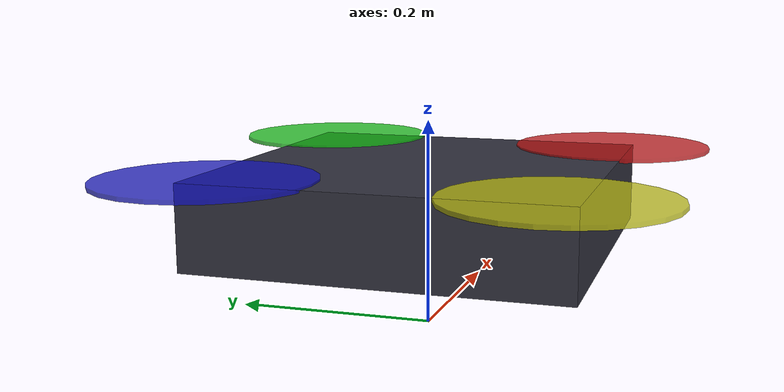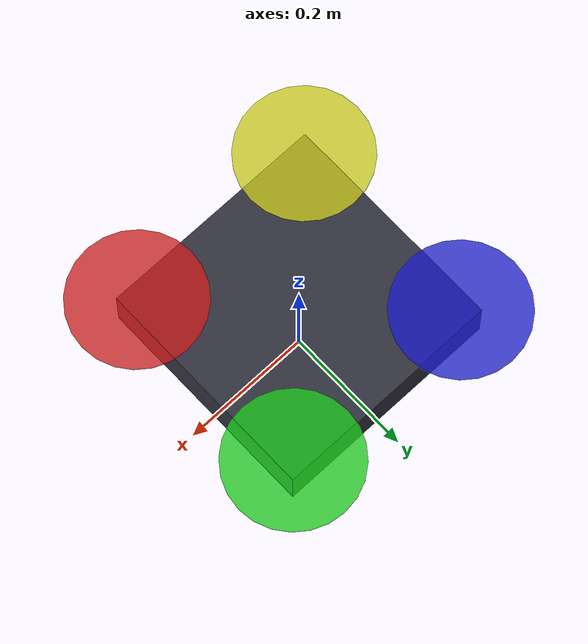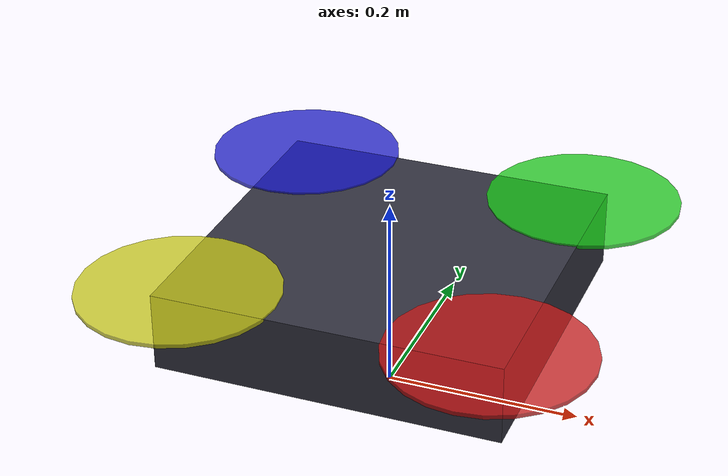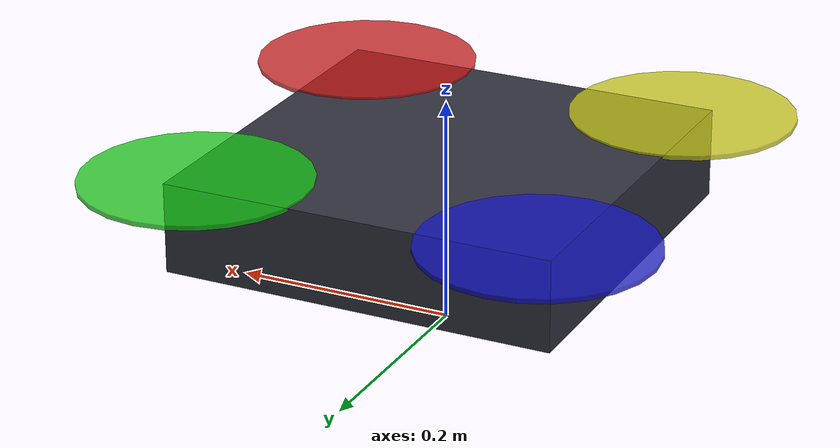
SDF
<?xml version="1.0" ?>
<sdf version="1.6">
  <model name="irs4_quadrotor">
    <pose>0 0 0.12 0 0 0</pose>

    <!-- Base link (fuselage) -->
    <link name="base_link">
      <inertial>
        <mass>1.8</mass>
        <inertia>
          <!-- Matches make_irs4_quadrotor() inertia tensor -->
          <ixx>0.025</ixx>
          <ixy>0.0</ixy>
          <ixz>0.0</ixz>
          <iyy>0.025</iyy>
          <iyz>0.0</iyz>
          <izz>0.042</izz>
        </inertia>
      </inertial>

      <collision name="body_collision">
        <geometry>
          <box><size>0.35 0.35 0.08</size></box>
        </geometry>
      </collision>

      <visual name="body_visual">
        <geometry>
          <box><size>0.35 0.35 0.08</size></box>
        </geometry>
        <material>
          <ambient>0.15 0.15 0.15 1</ambient>
          <diffuse>0.2 0.2 0.25 1</diffuse>
        </material>
      </visual>
    </link>

    <!-- Rotor 0 (front-right, CW) -->
    <link name="rotor_0">
      <pose>0.155 -0.155 0.04 0 0 0</pose>
      <inertial>
        <mass>0.015</mass>
        <inertia>
          <ixx>8e-6</ixx><iyy>8e-6</iyy><izz>1.5e-5</izz>
          <ixy>0</ixy><ixz>0</ixz><iyz>0</iyz>
        </inertia>
      </inertial>
      <visual name="rotor_0_visual">
        <geometry><cylinder><radius>0.10</radius><length>0.004</length></cylinder></geometry>
        <material><diffuse>0.8 0.1 0.1 0.8</diffuse></material>
      </visual>
    </link>
    <joint name="rotor_0_joint" type="revolute">
      <parent>base_link</parent>
      <child>rotor_0</child>
      <axis><xyz>0 0 1</xyz></axis>
    </joint>

    <!-- Rotor 1 (rear-left, CW) -->
    <link name="rotor_1">
      <pose>-0.155 0.155 0.04 0 0 0</pose>
      <inertial>
        <mass>0.015</mass>
        <inertia>
          <ixx>8e-6</ixx><iyy>8e-6</iyy><izz>1.5e-5</izz>
          <ixy>0</ixy><ixz>0</ixz><iyz>0</iyz>
        </inertia>
      </inertial>
      <visual name="rotor_1_visual">
        <geometry><cylinder><radius>0.10</radius><length>0.004</length></cylinder></geometry>
        <material><diffuse>0.1 0.1 0.8 0.8</diffuse></material>
      </visual>
    </link>
    <joint name="rotor_1_joint" type="revolute">
      <parent>base_link</parent>
      <child>rotor_1</child>
      <axis><xyz>0 0 1</xyz></axis>
    </joint>

    <!-- Rotor 2 (front-left, CCW) -->
    <link name="rotor_2">
      <pose>0.155 0.155 0.04 0 0 0</pose>
      <inertial>
        <mass>0.015</mass>
        <inertia>
          <ixx>8e-6</ixx><iyy>8e-6</iyy><izz>1.5e-5</izz>
          <ixy>0</ixy><ixz>0</ixz><iyz>0</iyz>
        </inertia>
      </inertial>
      <visual name="rotor_2_visual">
        <geometry><cylinder><radius>0.10</radius><length>0.004</length></cylinder></geometry>
        <material><diffuse>0.1 0.8 0.1 0.8</diffuse></material>
      </visual>
    </link>
    <joint name="rotor_2_joint" type="revolute">
      <parent>base_link</parent>
      <child>rotor_2</child>
      <axis><xyz>0 0 1</xyz></axis>
    </joint>

    <!-- Rotor 3 (rear-right, CCW) -->
    <link name="rotor_3">
      <pose>-0.155 -0.155 0.04 0 0 0</pose>
      <inertial>
        <mass>0.015</mass>
        <inertia>
          <ixx>8e-6</ixx><iyy>8e-6</iyy><izz>1.5e-5</izz>
          <ixy>0</ixy><ixz>0</ixz><iyz>0</iyz>
        </inertia>
      </inertial>
      <visual name="rotor_3_visual">
        <geometry><cylinder><radius>0.10</radius><length>0.004</length></cylinder></geometry>
        <material><diffuse>0.8 0.8 0.1 0.8</diffuse></material>
      </visual>
    </link>
    <joint name="rotor_3_joint" type="revolute">
      <parent>base_link</parent>
      <child>rotor_3</child>
      <axis><xyz>0 0 1</xyz></axis>
    </joint>

    <!-- Quadratic aerodynamic drag (paper Eq. 5, bluff-body C_D=1.0) -->
    <plugin name="quadrotor_aero" filename="libLiftDragPlugin.so">
      <a0>0.0</a0>
      <cla>0.0</cla>
      <cda>1.0</cda>
      <cma>0.0</cma>
      <alpha_stall>1.57</alpha_stall>
      <cla_stall>0.0</cla_stall>
      <cda_stall>1.0</cda_stall>
      <cma_stall>0.0</cma_stall>
      <area>0.05</area>
      <!-- ISA at 2800m MSL: rho ~ 0.962 kg/m^3 -->
      <air_density>0.962</air_density>
      <cp>0 0 0</cp>
      <forward>1 0 0</forward>
      <upward>0 0 1</upward>
      <link_name>base_link</link_name>
    </plugin>

    <!-- ArduPilot SITL plugin (copter frame) -->
    <plugin name="ardupilot_sitl" filename="libArduPilotPlugin.so">
      <fdm_addr>127.0.0.1</fdm_addr>
      <fdm_port_in>9002</fdm_port_in>
      <fdm_port_out>9003</fdm_port_out>
      <modelXYZToAirplaneXForwardZDown>0 0 0 3.14159 0 0</modelXYZToAirplaneXForwardZDown>
      <gazeboXYZToNED>0 0 0 3.14159 0 1.5708</gazeboXYZToNED>
      <imuName>base_link::imu_sensor</imuName>
      <connectionTimeoutMaxCount>5</connectionTimeoutMaxCount>

      <!-- Motor 0: front-right CW -->
      <control channel="0">
        <type>VELOCITY</type>
        <offset>0</offset>
        <p_gain>0.20</p_gain>
        <i_gain>0</i_gain>
        <d_gain>0</d_gain>
        <i_max>0</i_max>
        <i_min>0</i_min>
        <cmd_max>2500.0</cmd_max>
        <cmd_min>0</cmd_min>
        <jointName>rotor_0_joint</jointName>
        <multiplier>750</multiplier>
      </control>
      <!-- Motor 1: rear-left CW -->
      <control channel="1">
        <type>VELOCITY</type>
        <offset>0</offset>
        <p_gain>0.20</p_gain>
        <i_gain>0</i_gain>
        <d_gain>0</d_gain>
        <i_max>0</i_max>
        <i_min>0</i_min>
        <cmd_max>2500.0</cmd_max>
        <cmd_min>0</cmd_min>
        <jointName>rotor_1_joint</jointName>
        <multiplier>750</multiplier>
      </control>
      <!-- Motor 2: front-left CCW -->
      <control channel="2">
        <type>VELOCITY</type>
        <offset>0</offset>
        <p_gain>0.20</p_gain>
        <i_gain>0</i_gain>
        <d_gain>0</d_gain>
        <i_max>0</i_max>
        <i_min>0</i_min>
        <cmd_max>2500.0</cmd_max>
        <cmd_min>0</cmd_min>
        <jointName>rotor_2_joint</jointName>
        <multiplier>-750</multiplier>
      </control>
      <!-- Motor 3: rear-right CCW -->
      <control channel="3">
        <type>VELOCITY</type>
        <offset>0</offset>
        <p_gain>0.20</p_gain>
        <i_gain>0</i_gain>
        <d_gain>0</d_gain>
        <i_max>0</i_max>
        <i_min>0</i_min>
        <cmd_max>2500.0</cmd_max>
        <cmd_min>0</cmd_min>
        <jointName>rotor_3_joint</jointName>
        <multiplier>-750</multiplier>
      </control>
    </plugin>

  </model>
</sdf>
